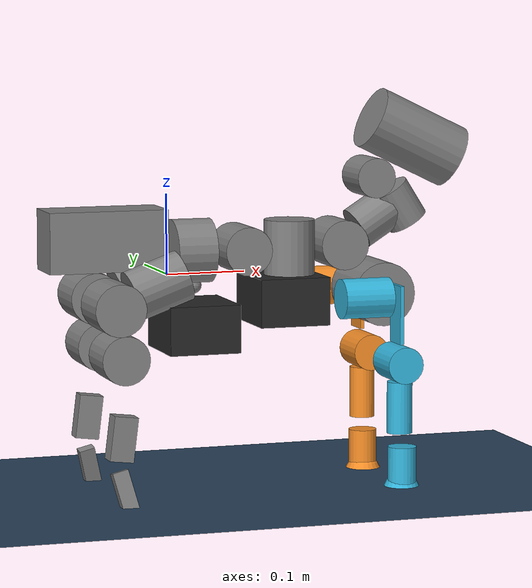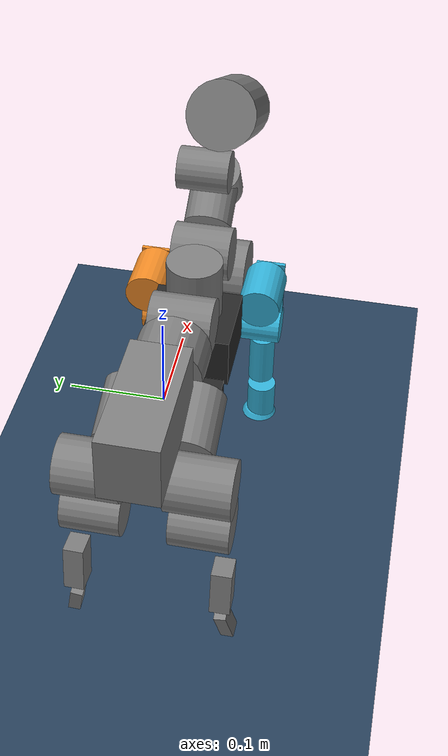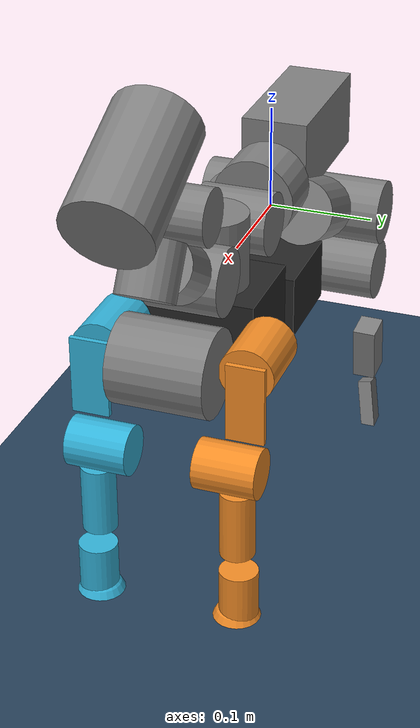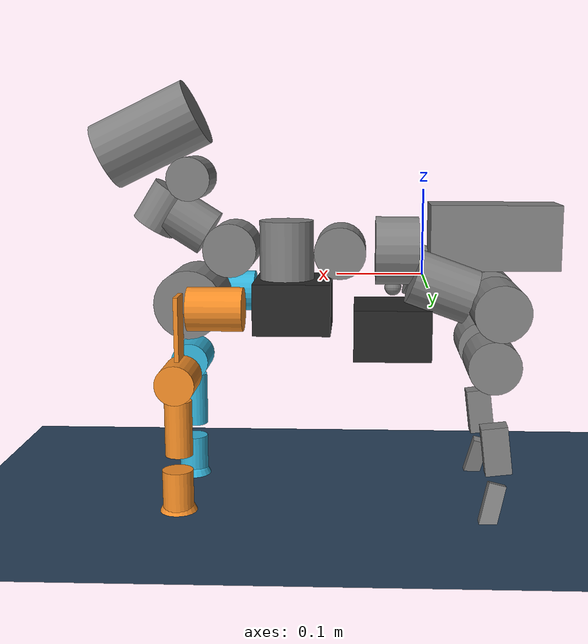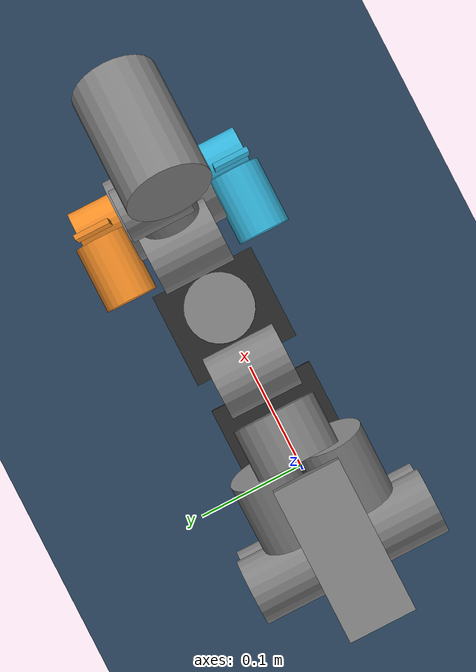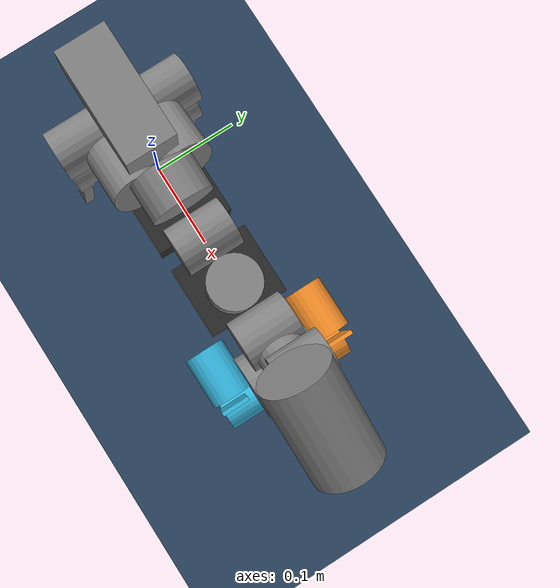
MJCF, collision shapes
<mujoco model="marsdog_without_tarsus scene">
  <include file="marsdog_without_tarsus.xml" />

  <statistic center="0.4 0 0.3" extent="1.2" />

  <visual>
    <headlight diffuse="0.6 0.6 0.6" ambient="0.3 0.3 0.3" specular="0 0 0" />
    <rgba haze="0.15 0.25 0.35 1" />
    <global azimuth="-140" elevation="-20" />
  </visual>

  <asset>
    <texture type="skybox" builtin="gradient" rgb1="0.3 0.5 0.7" rgb2="0 0 0" width="512" height="3072"/>
    <!-- floor -->
    <texture type="2d" name="groundplane" builtin="checker" mark="edge" rgb1="0.2 0.3 0.4" rgb2="0.1 0.2 0.3" markrgb="0.8 0.8 0.8" width="300" height="300"/>
    <material name="groundplane" texture="groundplane" texuniform="true" texrepeat="5 5" reflectance="0.2"/>
    <material name="step" rgba="0.55 0.55 0.58 1" />
  </asset>

  <worldbody>
    <!-- 机器人前方 box 台阶-->
    <light pos="0 0 1.5" dir="0 0 -1" directional="true"/>
    <geom name="floor" pos="0 0 -0.27" size="0 0 0.05" type="plane" material="groundplane" />
  </worldbody>
</mujoco>

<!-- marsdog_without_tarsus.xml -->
<mujoco model="marsdog">
  <compiler angle="radian" meshdir="." autolimits="true"/>
  <option timestep="0.001" gravity="0 0 -9.81" integrator="implicitfast"/>
  <default>
    <default class="marsdog">
      <default class="visual">
        <geom type="mesh" contype="0" conaffinity="0" group="2" density="0" material="body"/>
      </default>
      <default class="collision">
        <geom group="3" contype="1" conaffinity="1"/>
        <!-- front-leg collision also drawn in viewer (group 0 = always visible) -->
        <default class="front_col_l">
          <geom group="0" contype="1" conaffinity="1" rgba="0.95 0.55 0.15 0.90"/>
        </default>
        <default class="front_col_r">
          <geom group="0" contype="1" conaffinity="1" rgba="0.20 0.70 0.85 0.90"/>
        </default>
      </default>
    </default>
  </default>
  <asset>
    <material name="body" rgba="0.898039 0.917647 0.929412 1"/>
    <mesh name="base_link" file="base_link.STL" />
    <mesh name="imu_link" file="imu_link.STL" />
    <mesh name="rl_hip_link" file="rl_hip_link.STL" />
    <mesh name="rl_thigh_link" file="rl_thigh_link.STL" />
    <mesh name="rl_calf_link" file="rl_calf_link.STL" />
    <mesh name="rl_tarsus_link" file="rl_tarsus_link.STL" />
    <mesh name="rl_foot_link" file="rl_foot_link.STL" />
    <mesh name="rr_hip_link" file="rr_hip_link.STL" />
    <mesh name="rr_thigh_link" file="rr_thigh_link.STL" />
    <mesh name="rr_calf_link" file="rr_calf_link.STL" />
    <mesh name="rr_tarsus_link" file="rr_tarsus_link.STL" />
    <mesh name="rr_foot_link" file="rr_foot_link.STL" />
    <mesh name="waist_roll_link" file="waist_roll_link.STL" />
    <mesh name="waist_pitch_link" file="waist_pitch_link.STL" />
    <mesh name="waist_yaw_link" file="waist_yaw_link.STL" />
    <mesh name="neck_pitch_link" file="neck_pitch_link.STL" />
    <mesh name="head_roll_link" file="head_roll_link.STL" />
    <mesh name="head_yaw_link" file="head_yaw_link.STL" />
    <mesh name="head_pitch_link" file="head_pitch_link.STL" />
    <!-- front-leg STL visuals removed; collision primitives only -->
  </asset>
  <worldbody>
    <body name="base_link" pos="0 0 0" childclass="marsdog">
      <freejoint name="base_link"/>
      <inertial pos="-0.013554 0.000373 0.001080" mass="2.875" fullinertia="0.008005838 0.013668028 0.009240322 0.000066867 0.003619324 -0.000048830" />
      <geom class="visual" mesh="base_link"/>
      <geom pos="0.0350059 0 -0.065279" euler="0 0 0" contype="0" conaffinity="0" group="2" rgba="0.15 0.15 0.15 1" type="box" size="0.045 0.05 0.03"/>
      <geom name="base_hip_r_collision" class="collision" type="cylinder" size="0.032 0.035" pos="-0.021722 0.0335 -0.009186" euler="0 1.22172569 0"/>
      <geom name="base_hip_l_collision" class="collision" type="cylinder" size="0.032 0.035" pos="-0.021722 -0.0335 -0.009186" euler="0 1.22172569 0"/>
      <geom name="base_rear_collision" class="collision" type="box" size="0.0745 0.0325 0.0375" pos="-0.081722 0 0.0462" euler="0 0 0"/>
      <geom name="base_front_collision" class="collision" type="cylinder" size="0.04 0.025" pos="0.030059 0 0.028279" euler="0 1.57079632679 0"/>
      <geom name="base_battery_collision" class="collision" type="box" size="0.045 0.05 0.03" pos="0.0350059 0 -0.065279" euler="0 0 0"/>

      <!-- ==================== IMU (fixed) ==================== -->
      <body name="imu_link" pos="0.034059 -0.00020534 -0.015067" euler="-0.001365 0 0">
        <inertial pos="-6.93889390390723E-18 0 0" mass="2.51327412287186E-05" fullinertia="3.35103216382916E-11 3.35103216382916E-11 5.02654824574372E-11 1.5694542800438E-43 1.20912661957474E-27 -4.41762106923767E-28" />
        <site name="imu" size="0.01" pos="0 0 0"/>
        <geom class="visual" mesh="imu_link"/>
      </body>

      <!-- ==================== REAR LEFT LEG (rl) ==================== -->
      <body name="rl_hip_link" pos="-0.041722 0.0335 -0.015186" euler="-0.0014526 -0.34907 0.00049681">
        <joint name="rl_hip_joint" type="hinge" range="-0.49 0.77" axis="1 -0.00046685 0" damping="0.2" armature="0.03"/>
        <inertial pos="-0.045138 0.013793 -0.000017" mass="0.374" fullinertia="0.000168286 0.000185931 0.000184126 0.000007536 0.000000345 0.000000002"/>
        <geom class="visual" mesh="rl_hip_link"/>
        <geom name="rl_hip_collision" class="collision" type="cylinder" size="0.032 0.035" pos="-0.045 0.024 0" euler="1.57079632679 0 0"/>
        <body name="rl_thigh_link" pos="-0.046282 0.039422 5.0587E-05" euler="0 0.34907 0">
          <joint name="rl_thigh_joint" type="hinge" range="-0.71 1.77" axis="0 1 0.001365" damping="0.2" armature="0.03"/>
          <inertial pos="0.008049 -0.015362 -0.059444" mass="0.414" fullinertia="0.000341578 0.000290312 0.000218302 -0.000003441 0.000023433 -0.000011479"/>
          <geom class="visual" mesh="rl_thigh_link"/>
          <geom name="rl_thigh_collision" class="collision" type="cylinder" size="0.030 0.0325" pos="0.008 -0.015 -0.061" euler="1.57079632679 0 0"/>
          <body name="rl_calf_link" pos="0.023309 0.0090594 -0.11679" euler="0 0 0">
            <joint name="rl_calf_joint" type="hinge" range="0 1.56" axis="0 1 -0.001365" damping="0.2" armature="0.03"/>
            <inertial pos="-0.018059 -0.003444 -0.027577" mass="0.048" fullinertia="0.000035198 0.000036916 0.000005612 0.000000009 -0.000003707 -0.000000131"/>
            <geom class="visual" mesh="rl_calf_link"/>
            <geom name="rl_calf_collision" class="collision" type="box" size="0.0115 0.015 0.0275" pos="-0.019375 0.0000531 -0.038886" euler="3.1375032 -0.1227633 -1.5515043"/>
            <body name="rl_tarsus_link" pos="-0.01875 0.00010616 -0.077772" euler="0 0 0">
              <joint name="rl_tarsus_joint" type="hinge" range="-3.14159265358979 3.14159265358979" axis="0 -1 -0.001365" damping="1" armature="0.03"/>
              <inertial pos="0.001447 0.000898 -0.022124" mass="0.032" fullinertia="0.000017088 0.000018218 0.000002865 -0.000000745 0.000003837 0.000002996"/>
              <geom class="visual" mesh="rl_tarsus_link"/>
              <geom name="rl_tarsus_collision" class="collision" type="box" size="0.007 0.01 0.03" pos="0.003795 0.0052055 -0.030978" euler="-2.9552241 0.2431544 -1.6008232"/>
              <body name="rl_foot_link" pos="0.01159 0.010411 -0.061956" euler="0 0 0">
                <inertial pos="-0.000299 0.000002 0.001204" mass="0.005" fullinertia="0.000000119 0.000000115 0.000000172 0.000000000 -0.000000014 0.000000000"/>
                <geom class="visual" mesh="rl_foot_link"/>
                <geom name="rl_foot_collision" class="collision" type="mesh" mesh="rl_foot_link"/>
                <!-- Approximate sole contact point for mesh foot. -->
                <site name="rl" pos="0 0 0" type="sphere" size="0.023" group="5"/>
              </body>
            </body>
          </body>
        </body>
      </body>

      <!-- ==================== REAR RIGHT LEG (rr) ==================== -->
      <body name="rr_hip_link" pos="-0.041722 -0.0335 -0.015186" euler="-0.0014526 -0.34907 0.00049681">
        <joint name="rr_hip_joint" type="hinge" range="-0.49 0.77 " axis="-1 0.00046685 0" damping="0.2" armature="0.03"/>
        <inertial pos="-0.045138 -0.013793 -0.000017" mass="0.374" fullinertia="0.000168286 0.000185931 0.000184126 -0.000007536 0.000000345 -0.000000002"/>
        <geom class="visual" mesh="rr_hip_link"/>
        <geom name="rr_hip_collision" class="collision" type="cylinder" size="0.032 0.035" pos="-0.045 -0.024 0" euler="1.57079632679 0 0"/>
        <body name="rr_thigh_link" pos="-0.046318 -0.039378 -5.0537E-05" euler="0 0.34907 0">
          <joint name="rr_thigh_joint" type="hinge" range="-0.71 1.77 " axis="0 1 0.001365" damping="0.2" armature="0.03"/>
          <inertial pos="0.008049 0.015362 -0.059444" mass="0.414" fullinertia="0.000341578 0.000290312 0.000218302 0.000003441 0.000023433 0.000011479"/>
          <geom class="visual" mesh="rr_thigh_link"/>
          <geom name="rr_thigh_collision" class="collision" type="cylinder" size="0.030 0.0325" pos="0.008 0.015 -0.061" euler="1.57079632679 0 0"/>
          <body name="rr_calf_link" pos="0.022904 -0.0087404 -0.1169" euler="0 0 0">
            <joint name="rr_calf_joint" type="hinge" range="0 1.56" axis="0 1 0.001365" damping="0.2" armature="0.03"/>
            <inertial pos="-0.018059 0.003444 -0.027577" mass="0.048" fullinertia="0.000035198 0.000036916 0.000005612 -0.000000009 -0.000003707 0.000000131"/>
            <geom class="visual" mesh="rr_calf_link"/>
            <geom name="rr_calf_collision" class="collision" type="box" size="0.0115 0.015 0.0275" pos="-0.019375 -0.0000531 -0.038886" euler="-3.1375032 -0.1227633 1.5515043"/>
            <body name="rr_tarsus_link" pos="-0.019514 0 -0.077584" euler="0 0 0">
              <joint name="rr_tarsus_joint" type="hinge" range="-3.14159265358979 3.14159265358979" axis="0 -1 -0.001365" damping="1.0" armature="0.03"/>
              <inertial pos="0.001447 -0.000898 -0.022124" mass="0.032" fullinertia="0.000017088 0.000018218 0.000002865 0.000000745 0.000003837 -0.000002996"/>
              <geom class="visual" mesh="rr_tarsus_link"/>
              <geom name="rr_tarsus_collision" class="collision" type="box" size="0.007 0.01 0.03" pos="0.003795 -0.0052055 -0.030978" euler="2.9552241 0.2431544 1.6008232"/>
              <body name="rr_foot_link" pos="0.011375 -0.010242 -0.062024" euler="0 0 0">
                <inertial pos="-0.000299 -0.000002 0.001204" mass="0.005" fullinertia="0.000000119 0.000000115 0.000000172 0.000000000 -0.000000014 0.000000000"/>
                <geom class="visual" mesh="rr_foot_link"/>
                <geom name="rr_foot_collision" class="collision" type="mesh" mesh="rr_foot_link"/>
                <!-- Approximate sole contact point for mesh foot. -->
                <site name="rr" pos="0 0 0" type="sphere" size="0.023" group="5"/>
              </body>
            </body>
          </body>
        </body>
      </body>

      <!-- ==================== WAIST CHAIN: roll -> pitch -> yaw ==================== -->
      <body name="waist_roll_link" pos="0.055059 0 0.028279" euler="-0.001365 0 0">
        <joint name="waist_roll_joint" type="hinge" range="-1 1" axis="1 0 0" damping="0.2" armature="0.03"/>
        <inertial pos="0.039275 -0.004052 0.000334" mass="0.337" fullinertia="0.000180303 0.000178761 0.000189349 0.000006126 -0.000000251 0.000002575"/>
        <geom class="visual" mesh="waist_roll_link"/>
        <geom name="waist_roll_collision" class="collision" type="cylinder" size="0.03 0.035" pos="0.041 0 0" euler="1.57079632679 0 0"/>

        <body name="waist_pitch_link" pos="0.0415 -0.0235 0" euler="0 0 0">
          <joint name="waist_pitch_joint" type="hinge" range="0 0.24" axis="0 1 0.001365" damping="0.2" armature="0.03"/>
          <inertial pos="0.056619 0.022538 -0.039921" mass="1.098" fullinertia="0.002254678 0.002188164 0.001367514 -0.000032049 -0.000089799 0.000042627"/>
          <geom class="visual" mesh="waist_pitch_link"/>
          <geom pos="0.055 0.0235 -0.064" euler="0 0 0" contype="0" conaffinity="0" group="2" rgba="0.15 0.15 0.15 1" type="box" size="0.045 0.05 0.03"/>
          <geom name="waist_pitch_collision" class="collision" type="cylinder" size="0.032 0.035" pos="0.063 0.0235 0" euler="0 0 0"/>
          <geom name="waist_pitch_collision2" class="collision" type="box" size="0.045 0.05 0.03" pos="0.055 0.0235 -0.064" euler="0 0 0"/>

          <body name="waist_yaw_link" pos="0.0635 0.023463 0.026782" euler="0 0 0">
            <joint name="waist_yaw_joint" type="hinge" range="-1.2 1.2" axis="0 -0.001365 1" damping="0.2" armature="0.03"/>
            <inertial pos="0.093599 0.001895 -0.063865" mass="1.264" fullinertia="0.002513037 0.002998499 0.002016199 0.000068812 0.000977446 -0.000092237"/>
            <geom class="visual" mesh="waist_yaw_link" pos="0.000037 0.000032 0" euler="0 0 0"/>
            <geom name="waist_yaw_collision1" class="collision" type="cylinder" size="0.031 0.034" pos="0.063111 0.002447 -0.023828" euler="1.570796 0 0"/>
            <geom name="waist_yaw_collision2" class="collision" type="cylinder" size="0.040 0.044" pos="0.111 0.000027 -0.085968" euler="1.570796 0 0"/>

            <!-- ==================== NECK + HEAD CHAIN ==================== -->
            <body name="neck_pitch_link" pos="0.063536 0.031281 -0.022505" euler="0 0 0">
              <joint name="neck_pitch_joint" type="hinge" range="-0.58 0.45" axis="0 1 0"  damping="0.2" armature="0.03"/>
              <inertial pos="0.045423 -0.027662 0.0289" mass="0.295" fullinertia="0.000146524 0.000165504 0.000176361 0.000028014 -0.000031716 0.000017796"/>
              <geom class="visual" mesh="neck_pitch_link" pos="0 0 0.000032" euler="0 0 0"/>
              <geom name="neck_pitch_collision" class="collision" type="cylinder" size="0.028 0.025" pos="0.047501 -0.02831 0.028921" euler="-3.1415915 -1.005106 -3.1415915"/>

              <body name="head_roll_link" pos="0.067501 -0.02831 0.042889" euler="0 -0.56569 0">
                <joint name="head_roll_joint" type="hinge" range="-3.14159265358979 3.14159265358979" axis="-1 0.00073162 0" damping="0.2" armature="0.03"/>
                <inertial pos="0.01026 -0.003837 -0.000734" mass="0.274" fullinertia="0.000110718 0.000114116 0.000100935 -0.000000100 -0.000000325 0.000000559"/>
                <geom class="visual" mesh="head_roll_link" pos="-0.014338 0 0.004199" euler="0 0 0"/>
                <geom name="head_roll_collision" class="collision" type="cylinder" size="0.026 0.025" pos="0.011662 -0.004 -0.005801" euler="0 0 0"/>

                <body name="head_yaw_link" pos="0.015514 0.0010134 0.014495" euler="0 0 0">
                  <joint name="head_yaw_joint" type="hinge" range="-3.14159265358979 3.14159265358979" axis="0 0 1" damping="0.2" armature="0.03"/>
                  <inertial pos="-0.013963 0.004899 0.029247" mass="0.274" fullinertia="0.000114052 0.000100887 0.000110740 0.000000468 0.000000028 0.000000570"/>
                  <geom class="visual" mesh="head_yaw_link" pos="-0.014338 0 0.004199" euler="-1.5696 0.0007037 -1.5707972"/>
                  <geom name="head_yaw_collision" class="collision" type="cylinder" size="0.025 0.03" pos="-0.014338 0.006 0.029199" euler="1.570796 0 0"/>

                  <body name="head_pitch_link" pos="-0.0145282626 -0.0215314491 0.0289972420" euler="0 0.56570 0">
                    <joint name="head_pitch_joint" type="hinge" range="-1.7 0.5" axis="0 1 0" damping="0.2" armature="0.03"/>
                    <inertial pos="0.007085 0.00162 0.010054" mass="0.025" fullinertia="0.000006091 0.000008226 0.000004837 -0.000000973 -0.000002297 -0.000001274"/>
                    <geom class="visual" mesh="head_pitch_link" pos="0 0 0.000032" euler="0 0 0"/>
                    <geom name="head_pitch_collision" class="collision" type="cylinder" size="0.04 0.06" pos="0.05 0.01 0.050032" euler="3.1415926 1.12173 3.1415926"/>
                  </body>
                </body>
              </body>
            </body>

            <!-- ==================== FRONT LEFT LEG (fl) ==================== -->
            <!-- link lengths (joint-to-joint): thigh_roll→calf=0.09, calf→tarsus=0.11, tarsus→foot=0.052 -->
            <body name="fl_hip_pitch_link" pos="0.11134 0.040867 -0.085936" euler="0 0 0">
              <joint name="fl_hip_pitch_joint" type="hinge" range="-0.97 3.14159265358979 " axis="0 -1 -0.001365" damping="0.2" armature="0.03"/>
              <inertial pos="-0.036249 0.026796 -0.000863" mass="0.266" fullinertia="0.000094796 0.000119621 0.000125834 0.000009648 -0.000000375 0.000000295"/>
              <geom name="fl_hip_pitch_collision" class="front_col_l" type="cylinder" size="0.025 0.0315" pos="-0.036 0.027114 0.000032" euler="0 1.570796 0"/>
              <body name="fl_thigh_roll_link" pos="-0.0205 0.028 3.8219E-05" euler="0 0 0">
                <joint name="fl_thigh_roll_joint" type="hinge" range="-0.18 3.14159265358979" axis="0.99966 3.5842E-05 0.026258" damping="0.2" armature="0.03"/>
                <inertial pos="0.019147 0.004458 -0.03082" mass="0.087" fullinertia="0.000074448 0.000076387 0.000013919 -0.000002300 0.000014306 0.000011338"/>
                <geom name="fl_thigh_collision" class="front_col_l" type="box" size="0.0025 0.0175 0.0365" pos="0.026543 0.002480 -0.020660" euler="0 0 0"/>
                <body name="fl_calf_link" pos="0.028613 0.004256 -0.085224" euler="0 0 0">
                  <joint name="fl_calf_joint" type="hinge" range="-1.93 1.82 " axis="0 -1 -0.001365" damping="0.2" armature="0.03"/>
                  <inertial pos="0.001263 -0.012283 -0.03026" mass="0.462" fullinertia="0.000780649 0.000757818 0.000138689 -0.000002898 0.000027933 0.000060391"/>
                  <geom name="fl_calf_collision1" class="front_col_l" type="cylinder" size="0.016 0.0325" pos="0.001821 -0.007644 -0.054932" euler="0 0 0"/>
                  <geom name="fl_calf_collision2" class="front_col_l" type="cylinder" size="0.023 0.0285" pos="0.00202 -0.01408 0.000032" euler="1.570796 0 0"/>
                  <body name="fl_tarsus_link" pos="0.003642 -0.002013 -0.109921" euler="0 0 0">
                    <!-- range: toward head 6°, toward tail 90° (joint+ = toward tail) -->
                    <inertial pos="0 -0.005009 -0.026597" mass="0.067" fullinertia="0.000017528 0.000015233 0.000008400 0.000000000 -0.000000001 -0.000000662"/>
                    <geom name="fl_tarsus_collision" class="front_col_l" type="cylinder" size="0.018 0.026" pos="0 -0.003672 -0.020849" euler="0 0 0"/>
                    <body name="fl_foot_link" pos="0 -0.005425 -0.051716" euler="0 0 0">
                      <inertial pos="0 0.000039 0.001272" mass="0.005" fullinertia="0.000000119 0.000000115 0.000000172 0.000000000 -0.000000014 0.000000000"/>
                      <geom name="fl_foot_collision" class="front_col_l" type="sphere" size="0.023" pos="0 0 0"/>
                      <!-- Site at sphere center for reward/sensor alignment. -->
                      <site name="fl" pos="0 0 0" type="sphere" size="0.023" group="5"/>
                    </body>
                  </body>
                </body>
              </body>
            </body>

            <!-- ==================== FRONT RIGHT LEG (fr) ==================== -->
            <!-- link lengths (joint-to-joint): thigh_roll→calf=0.09, calf→tarsus=0.11, tarsus→foot=0.052 -->
            <body name="fr_hip_pitch_link" pos="0.11134 -0.040633 -0.086047" euler="0 0 0">
              <joint name="fr_hip_pitch_joint" type="hinge" range="-0.97 3.14159265358979" axis="0 -1 -0.001365" damping="0.2" armature="0.03"/>
              <inertial pos="-0.036249 -0.026722 -0.000863" mass="0.266" fullinertia="0.000094796 0.000119621 0.000125834 -0.000009648 -0.000000375 -0.000000295"/>
              <geom name="fr_hip_pitch_collision" class="front_col_r" type="cylinder" size="0.025 0.0315" pos="-0.036 -0.02704 0.000032" euler="0 1.570796 0"/>
              <body name="fr_thigh_roll_link" pos="-0.020493 -0.027999 -0.00057652" euler="0 0 0">
                <joint name="fr_thigh_roll_joint" type="hinge" range="-0.18 3.14159265358979 " axis="-0.99966 3.5842E-05 -0.026258" damping="0.2" armature="0.03"/>
                <inertial pos="0.019147 -0.004384 -0.03082" mass="0.087" fullinertia="0.000074448 0.000076387 0.000013919 0.000002300 0.000014306 -0.000011338"/>
                <geom name="fr_thigh_collision" class="front_col_r" type="box" size="0.0025 0.0175 0.0365" pos="0.026543 -0.002390 -0.020660" euler="0 0 0"/>
                <body name="fr_calf_link" pos="0.030841 -0.004024 -0.084455" euler="0 0 0">
                  <joint name="fr_calf_joint" type="hinge" range="-1.93 1.82" axis="0 -1 -0.001365" damping="0.2" armature="0.03"/>
                  <inertial pos="0.001263 0.012357 -0.03026" mass="0.462" fullinertia="0.000780649 0.000757818 0.000138689 0.000002898 0.000027933 -0.000060391"/>
                  <geom name="fr_calf_collision1" class="front_col_r" type="cylinder" size="0.016 0.0325" pos="0.001821 0.007711 -0.054934" euler="0 0 0"/>
                  <geom name="fr_calf_collision2" class="front_col_r" type="cylinder" size="0.023 0.0285" pos="0.00202 0.014154 0.000032" euler="1.570796 0 0"/>
                  <body name="fr_tarsus_link" pos="0.005000 0.002314 -0.109862" euler="0 0 0">
                    <!-- range: toward head 6°, toward tail 90° (joint+ = toward tail) -->
                    <inertial pos="0 0.005083 -0.026597" mass="0.067" fullinertia="0.000017528 0.000015233 0.000008400 0.000000000 -0.000000001 0.000000662"/>
                    <geom name="fr_tarsus_collision" class="front_col_r" type="cylinder" size="0.018 0.026" pos="0 0.003815 -0.020842" euler="0 0 0"/>
                    <body name="fr_foot_link" pos="0 0.005566 -0.051701" euler="0 0 0">
                      <inertial pos="0 0.000035 0.001272" mass="0.005" fullinertia="0.000000119 0.000000115 0.000000172 0.000000000 -0.000000014 0.000000000"/>
                      <geom name="fr_foot_collision" class="front_col_r" type="sphere" size="0.023" pos="0 0 0"/>
                      <!-- Site at sphere center for reward/sensor alignment. -->
                      <site name="fr" pos="0 0 0" type="sphere" size="0.023" group="5"/>
                    </body>
                  </body>
                </body>
              </body>
            </body>
          </body>
        </body>
      </body>
    </body>
  </worldbody>

  <sensor>
    <gyro name="imu_ang_vel" site="imu"/>
    <velocimeter name="imu_lin_vel" site="imu"/>
  </sensor>
  <equality>
    <joint
      name="rl_tarsus_mimic"
      joint1="rl_tarsus_joint"
      joint2="rl_calf_joint"
      polycoef="0 1.0 0 0 0"
    />
    <joint
      name="rr_tarsus_mimic"
      joint1="rr_tarsus_joint"
      joint2="rr_calf_joint"
      polycoef="0 1.0 0 0 0"
    />
  </equality>
</mujoco>
